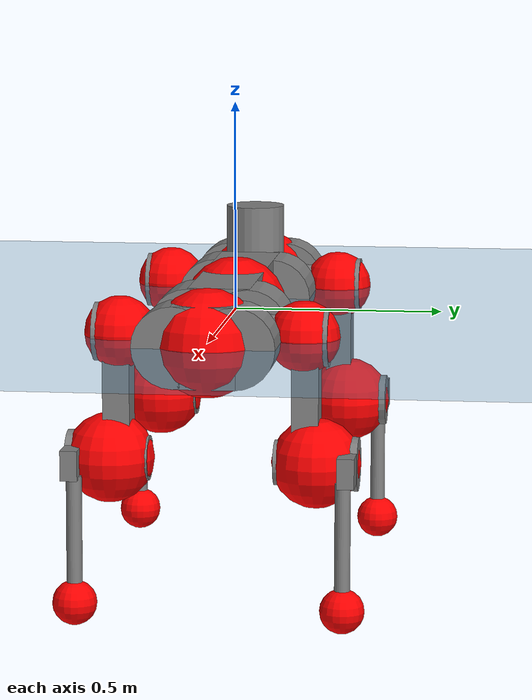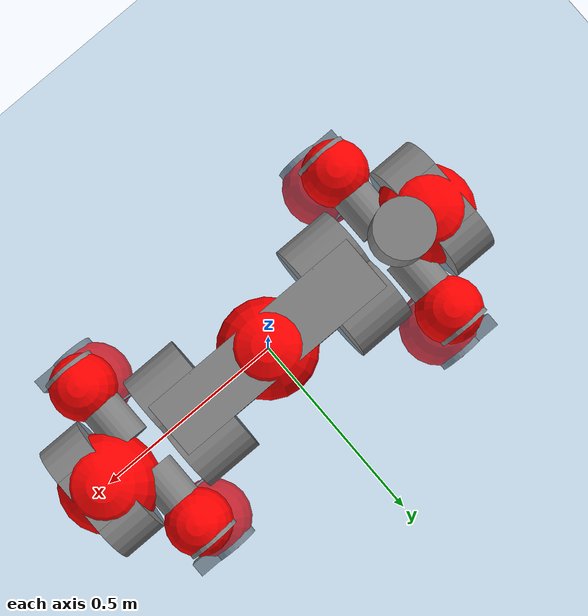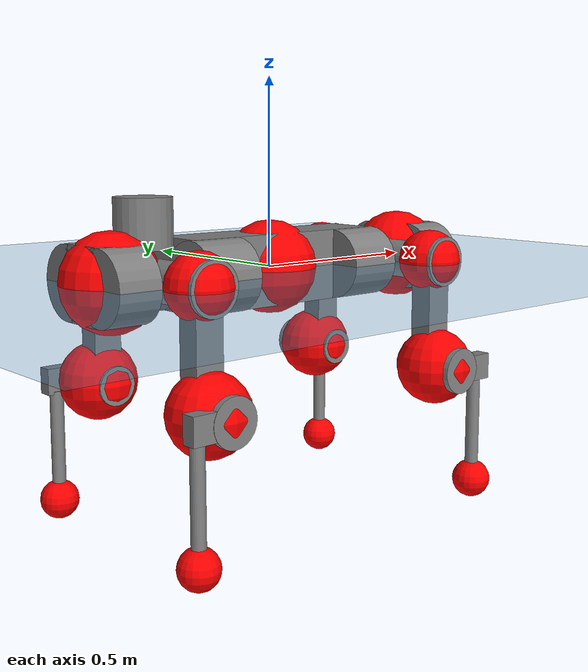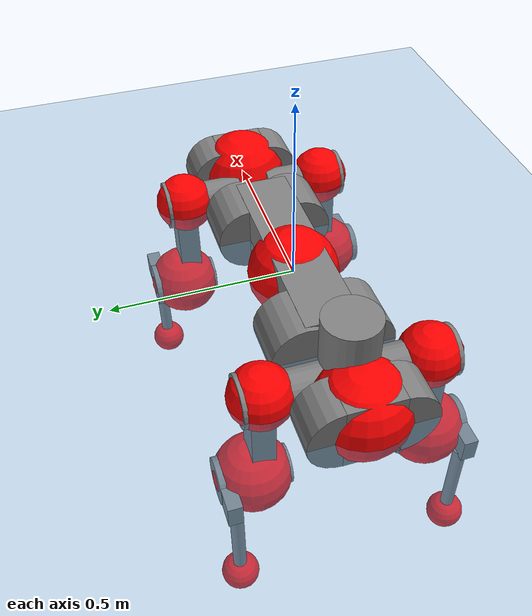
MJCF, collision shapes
<mujoco model="anymal_c">
  <compiler angle="radian" assetdir="assets" balanceinertia="true" inertiafromgeom="false"/>

  <option timestep="0.005" density="1.2" viscosity="2e-05"/>

  <size nkey="1"/>

  <visual>
    <quality shadowsize="8192"/>
    <map shadowclip="0.5"/>
  </visual>

  <default>
    <default class="/">
      <material specular="0" shininess="0.25"/>
      <geom contype="0" conaffinity="0" group="1" solref="-1000 -80"/>
      <site size="0.01 0.005 0.005" group="5"/>
      <general forcelimited="true" forcerange="-80 80" biastype="affine" gainprm="80" biasprm="0 -80 -2"/>
      <default class="anymal_c">
        <joint armature="0.01" damping="0.01" frictionloss="0.1"/>
        <default class="visual">
          <geom type="mesh" group="2"/>
          <default class="visual_zflip"/>
        </default>
        <default class="collision">
          <geom type="cylinder" group="3"/>
          <default class="foot">
            <geom size="0.03 0 0" type="sphere" condim="6" priority="1" friction="0.8 0.02 0.01" solimp="0.015 1 0.03"/>
          </default>
        </default>
      </default>
      <default class="reward_collision_sphere">
        <geom group="5" rgba="1 0 0 1"/>
      </default>
    </default>
  </default>

  <asset>
    <texture type="skybox" colorspace="auto" name="//unnamed_texture_0" builtin="gradient" rgb1="0.95 0.95 0.95" rgb2="0.95 0.95 0.95" width="100" height="600"/>
    <texture type="2d" colorspace="auto" name="texplane" builtin="checker" rgb1="0.345 0.575 0.748" rgb2="0.345 0.575 0.748" markrgb="1 1 1" width="512" height="512"/>
    <texture type="2d" colorspace="linear" name="base" file="base.png"/>
    <texture type="2d" colorspace="linear" name="top_shell" file="top_shell.png"/>
    <texture type="2d" colorspace="linear" name="bottom_shell" file="bottom_shell.png"/>
    <texture type="2d" colorspace="linear" name="remote" file="remote.png"/>
    <texture type="2d" colorspace="linear" name="hatch" file="hatch.png"/>
    <texture type="2d" colorspace="linear" name="handle" file="handle.png"/>
    <texture type="2d" colorspace="linear" name="face" file="face.png"/>
    <texture type="2d" colorspace="linear" name="battery" file="battery.png"/>
    <texture type="2d" colorspace="linear" name="lidar_cage" file="lidar_cage.png"/>
    <texture type="2d" colorspace="linear" name="depth_camera" file="depth_camera.png"/>
    <texture type="2d" colorspace="linear" name="wide_angle_camera" file="wide_angle_camera.png"/>
    <texture type="2d" colorspace="linear" name="lidar" file="lidar.png"/>
    <texture type="2d" colorspace="linear" name="drive" file="drive.png"/>
    <texture type="2d" colorspace="linear" name="hip_l" file="hip_l.png"/>
    <texture type="2d" colorspace="linear" name="shank_l" file="shank_l.png"/>
    <texture type="2d" colorspace="linear" name="foot" file="foot.png"/>
    <texture type="2d" colorspace="linear" name="thigh" file="thigh.png"/>
    <texture type="2d" colorspace="linear" name="shank_r" file="shank_r.png"/>
    <texture type="2d" colorspace="linear" name="hip_r" file="hip_r.png"/>
    <material name="MatPlane" class="/" texture="texplane" texuniform="true" texrepeat="2 2" specular="0.9" shininess="0.5"/>
    <material name="black_plastic" class="/" rgba="0.007 0.007 0.007 1"/>
    <material name="green" class="/" rgba="0.052 0.178 0.033 1"/>
    <material name="red" class="/" rgba="0.178 0.006 0.005 1"/>
    <material name="yellow" class="/" rgba="0.178 0.119 0.006 1"/>
    <material name="lwl" class="/" rgba="0.8 0.8 0.8 1"/>
    <material name="base" class="/" texture="base"/>
    <material name="top_shell" class="/" texture="top_shell"/>
    <material name="bottom_shell" class="/" texture="bottom_shell"/>
    <material name="hip_l" class="/" texture="hip_l"/>
    <material name="thigh" class="/" texture="thigh"/>
    <material name="shank_l" class="/" texture="shank_l"/>
    <material name="foot" class="/" texture="foot"/>
    <material name="hip_r" class="/" texture="hip_r"/>
    <material name="shank" class="/" texture="shank_r"/>
    <material name="hatch" class="/" texture="hatch"/>
    <material name="remote" class="/" texture="remote"/>
    <material name="handle" class="/" texture="handle"/>
    <material name="face" class="/" texture="face"/>
    <material name="depth_camera" class="/" texture="depth_camera"/>
    <material name="wide_angle_camera" class="/" texture="wide_angle_camera"/>
    <material name="battery" class="/" texture="battery"/>
    <material name="lidar_cage" class="/" texture="lidar_cage"/>
    <material name="lidar" class="/" texture="lidar"/>
    <material name="drive" class="/" texture="drive"/>
    <mesh name="base_0" class="/" file="base_0.obj"/>
    <mesh name="base_1" class="/" file="base_1.obj"/>
    <mesh name="base_2" class="/" file="base_2.obj"/>
    <mesh name="base_3" class="/" file="base_3.obj"/>
    <mesh name="base_4" class="/" file="base_4.obj"/>
    <mesh name="base_5" class="/" file="base_5.obj"/>
    <mesh name="top_shell" class="/" file="top_shell.obj"/>
    <mesh name="bottom_shell" class="/" file="bottom_shell.obj"/>
    <mesh name="remote" class="/" file="remote.obj"/>
    <mesh name="handle" class="/" file="handle.obj"/>
    <mesh name="face" class="/" file="face.obj"/>
    <mesh name="wide_angle_camera" class="/" file="wide_angle_camera.obj"/>
    <mesh name="depth_camera" class="/" file="depth_camera.obj"/>
    <mesh name="battery" class="/" file="battery.obj"/>
    <mesh name="lidar_cage" class="/" file="lidar_cage.obj"/>
    <mesh name="lidar" class="/" file="lidar.obj"/>
    <mesh name="drive" class="/" file="drive.obj"/>
    <mesh name="hip_l" class="/" file="hip_l.obj"/>
    <mesh name="thigh" class="/" file="thigh.obj"/>
    <mesh name="shank_l" class="/" file="shank_l.obj"/>
    <mesh name="foot" class="/" file="foot.obj"/>
    <mesh name="hip_r" class="/" file="hip_r.obj"/>
    <mesh name="hatch" class="/" file="hatch.obj"/>
    <mesh name="shank_r" class="/" file="shank_r.obj"/>
  </asset>

  <worldbody>
    <geom name="floor" class="/" size="100 100 0.125" type="plane" group="0" material="MatPlane"/>
    <light name="toplight_shadow" class="/" pos="0 0 5" dir="0.0990148 0.0990148 -0.990148" type="directional" ambient="0.04 0.04 0.04" diffuse="0.55 0.55 0.55" specular="0.12 0.12 0.12"/>
    <light name="toplight_fill" class="/" pos="0 0 5" dir="0.0990148 0.0990148 -0.990148" type="directional" castshadow="false" ambient="0.04 0.04 0.04" diffuse="0.3 0.3 0.3" specular="0.08 0.08 0.08"/>
    <body name="trunk" childclass="anymal_c" pos="0.000700605 -0.000303193 8.29175e-05" quat="1 -2.61548e-05 -9.41728e-05 -0.000454856">
      <inertial pos="0.000457821 -0.00281623 0.0495237" quat="0.497014 0.50346 0.498941 0.500563" mass="22.7339" diaginertia="1.06807 0.601575 0.258438"/>
      <joint name="//unnamed_joint_0" type="free" armature="0" damping="0" frictionloss="0"/>
      <geom name="//unnamed_geom_1" class="visual" material="green" mesh="base_0"/>
      <geom name="//unnamed_geom_2" class="visual" material="yellow" mesh="base_1"/>
      <geom name="//unnamed_geom_3" class="visual" material="red" mesh="base_2"/>
      <geom name="//unnamed_geom_4" class="visual" material="black_plastic" mesh="base_3"/>
      <geom name="//unnamed_geom_5" class="visual" material="lwl" mesh="base_4"/>
      <geom name="//unnamed_geom_6" class="visual" material="base" mesh="base_5"/>
      <geom name="trunk_1" class="collision" size="0.30346 0.0732489 0.0941771" type="box"/>
      <geom name="trunk_2" class="collision" size="0.0941771 0.0758649" pos="0.241017 0.0695564 0" quat="0.707107 0 0.707107 0"/>
      <geom name="trunk_3" class="collision" size="0.0941771 0.0758649" pos="-0.241017 0.0695564 0" quat="0.707107 0 0.707107 0"/>
      <geom name="trunk_4" class="collision" size="0.0941771 0.0758649" pos="0.241017 -0.0695564 0" quat="0.707107 0 0.707107 0"/>
      <geom name="trunk_5" class="collision" size="0.0941771 0.0758649" pos="-0.241017 -0.0695564 0" quat="0.707107 0 0.707107 0"/>
      <geom name="//unnamed_geom_12" class="visual" material="top_shell" mesh="top_shell"/>
      <geom name="//unnamed_geom_13" class="visual" material="bottom_shell" mesh="bottom_shell"/>
      <geom name="//unnamed_geom_14" class="visual" material="remote" mesh="remote"/>
      <geom name="//unnamed_geom_15" class="visual" material="handle" mesh="handle"/>
      <geom name="//unnamed_geom_16" class="visual" pos="0.459317 0 0" quat="1 0 0 0" material="face" mesh="face"/>
      <geom name="trunk_6" class="collision" size="0.0575527 0.0732489 0.0941771" pos="0.520264 0 0" type="box"/>
      <geom name="//unnamed_geom_18" class="collision" size="0.0941771 0.0575527" pos="0.520264 0.0695564 0" quat="0.707107 0 0.707107 0"/>
      <geom name="//unnamed_geom_19" class="collision" size="0.0941771 0.0575527" pos="0.520264 -0.0695564 0" quat="0.707107 0 0.707107 0"/>
      <geom name="//unnamed_geom_20" class="visual" pos="0.511563 0 -0.0297564" quat="0.965926 0 0.258819 0" material="depth_camera" mesh="depth_camera"/>
      <geom name="//unnamed_geom_21" class="visual" pos="0.568468 0 0.0155306" material="wide_angle_camera" mesh="wide_angle_camera"/>
      <geom name="//unnamed_geom_22" class="visual_zflip" pos="-0.459317 0 0" quat="0 0 0 1" material="face" mesh="face"/>
      <geom name="trunk_7" class="collision" size="0.0575527 0.0732489 0.0941771" pos="-0.520264 0 0" quat="0 0 0 1" type="box"/>
      <geom name="//unnamed_geom_24" class="collision" size="0.0941771 0.0575527" pos="-0.520264 -0.0695564 0" quat="0 -0.707107 0 0.707107"/>
      <geom name="//unnamed_geom_25" class="collision" size="0.0941771 0.0575527" pos="-0.520264 0.0695564 0" quat="0 -0.707107 0 0.707107"/>
      <geom name="//unnamed_geom_26" class="visual" pos="-0.511563 0 -0.0297564" quat="0 -0.258819 0 0.965926" material="depth_camera" mesh="depth_camera"/>
      <geom name="//unnamed_geom_27" class="visual_zflip" pos="-0.568468 0 0.0155306" quat="0 0 0 1" material="wide_angle_camera" mesh="wide_angle_camera"/>
      <geom name="//unnamed_geom_28" class="visual" material="battery" mesh="battery"/>
      <geom name="//unnamed_geom_29" class="visual" pos="0 0.0744706 0.030675" quat="0.683013 -0.183013 0.183013 0.683013" material="depth_camera" mesh="depth_camera"/>
      <geom name="//unnamed_geom_30" class="visual" pos="0 -0.0744706 0.030675" quat="0.683013 0.183013 0.183013 -0.683013" material="depth_camera" mesh="depth_camera"/>
      <geom name="//unnamed_geom_31" class="visual" pos="-0.403357 0 0.0762526" quat="1 0 0 0" material="lidar_cage" mesh="lidar_cage"/>
      <geom name="trunk_8" class="collision" size="0.0732489 0.0627847" pos="-0.403357 0 0.1385"/>
      <geom name="//unnamed_geom_33" class="visual" pos="-0.403357 -4.49687e-05 0.147525" quat="0.707107 0 0 -0.707107" material="lidar" mesh="lidar"/>
      <geom name="//unnamed_geom_34" class="visual" pos="0.332326 0.103357 -7.5533e-10" quat="0.258819 0.965926 0 0" material="drive" mesh="drive"/>
      <geom name="//unnamed_geom_35" class="visual" pos="0.332326 -0.103357 7.5533e-10" quat="0.258819 -0.965926 0 0" material="drive" mesh="drive"/>
      <geom name="//unnamed_geom_36" class="visual" pos="-0.332326 0.103357 7.5533e-10" quat="0 0 0.965926 -0.258819" material="drive" mesh="drive"/>
      <geom name="//unnamed_geom_37" class="visual" pos="-0.332326 -0.103357 -7.5533e-10" quat="0 0 -0.965926 -0.258819" material="drive" mesh="drive"/>
      <geom name="//unnamed_geom_38" class="visual" pos="0.128542 0 0.0757338" quat="1 0 0 0" material="hatch" mesh="hatch"/>
      <geom name="//unnamed_geom_39" class="reward_collision_sphere" size="0.125569"/>
      <geom name="//unnamed_geom_40" class="reward_collision_sphere" size="0.125569" pos="0.498656 0 0"/>
      <geom name="//unnamed_geom_41" class="reward_collision_sphere" size="0.125569" pos="-0.498656 0 0"/>
      <site name="imu" pos="0.289172 0.00870393 0.0345037" size="0.0104641"/>
      <camera name="track" pos="0 -1.98733 0" quat="0.707107 0.707107 0 0" mode="trackcom"/>
      <camera name="ego_camera" pos="0.498656 0 -0.041498" quat="-0.5 -0.5 0.5 0.5"/>
      <body name="LF_HIP" pos="0.330187 0.100934 -0.00116935" quat="0.259221 0.965818 9.02612e-05 0.000248684">
        <inertial pos="0.0626915 -0.0174875 -0.00801171" quat="-0.127256 0.709893 -0.135562 0.679324" mass="3.15237" diaginertia="0.00956709 0.00447302 0.00383841"/>
        <joint name="LF_HAA" pos="0 0 0" axis="1 -0.000440115 0.000466293" range="-0.721295 0.502527" armature="0.0106623" damping="0.020414" frictionloss="0.0925252"/>
        <geom name="//unnamed_geom_42" class="visual" pos="0 -4.44327e-05 7.29803e-06" quat="0.258819 -0.965926 0 0" material="hip_l" mesh="hip_l"/>
        <geom name="//unnamed_geom_43" class="visual" pos="0.0663766 -0.0789379 -0.0458987" quat="0.183013 -0.683013 0.683013 0.183013" material="drive" mesh="drive"/>
        <geom name="//unnamed_geom_44" class="collision" size="0.0523206 0.0732489" pos="0.0663766 -0.011884 -0.00716359" quat="-0.353553 -0.612372 0.612372 -0.353553"/>
        <body name="LF_THIGH" pos="0.0651112 -0.0695273 -0.0424557" quat="0.18226 -0.682818 0.683666 0.182051">
          <inertial pos="0.0345023 0.000238366 -0.253213" quat="0.994249 -0.0132151 -0.07168 0.0784635" mass="3.42984" diaginertia="0.0507375 0.0282393 0.00503666"/>
          <joint name="LF_HFE" pos="0 0 0" axis="0.999992 -0.00387117 0.000447749" stiffness="0.00270114" range="-3.08827 3.18308" armature="0.0108663" damping="0.0215304" frictionloss="0.0954617"/>
          <geom name="//unnamed_geom_45" class="visual" pos="0.00227732 3.58853e-06 0" quat="0.707107 0 0 -0.707107" material="thigh" mesh="thigh"/>
          <geom name="//unnamed_geom_46" class="collision" size="0.0680168 0.0418565" pos="0.044325 0 0" quat="0.5 0.5 -0.5 -0.5"/>
          <geom name="//unnamed_geom_47" class="collision" size="0.0392405 0.0313924 0.147873" pos="0.0332437 0 -0.146606" quat="0.707107 0 0 -0.707107" type="box"/>
          <geom name="//unnamed_geom_48" class="visual" pos="0.111145 0 -0.295673" quat="1 0 0 0" material="drive" mesh="drive"/>
          <geom name="//unnamed_geom_49" class="collision" size="0.0523206 0.0732489" pos="0.0335762 0 -0.295673" quat="0.707107 0 0.707107 0"/>
          <geom name="//unnamed_geom_50" class="reward_collision_sphere" size="0.083713" pos="0.0277031 0 0"/>
          <body name="LF_SHANK" pos="0.112088 0.00267954 -0.2951" quat="1 0.000134659 0.000307199 -4.84108e-06">
            <inertial pos="0.00605938 -0.0618366 -0.0848512" quat="0.993126 -0.114326 0.00105511 -0.0250905" mass="0.682929" diaginertia="0.0166143 0.00900121 0.00134621"/>
            <joint name="LF_KFE" pos="0 0 0" axis="0.999988 -0.00497729 4.62191e-05" range="-3.09592 3.14485" armature="0.0104645" damping="0.00676171" frictionloss="0.10703"/>
            <geom name="//unnamed_geom_51" class="visual" pos="0.000742586 0.0039595 0" quat="0.707107 0 0 -0.707107" material="shank_l" mesh="shank_l"/>
            <geom name="LF_kfe_act" class="collision" size="0.0627847 0.0209282" pos="0.0221625 0 0" quat="0.5 0.5 -0.5 -0.5"/>
            <geom name="//unnamed_geom_53" class="collision" size="0.0601677 0.0353164 0.0198818" pos="0.0221625 -0.0571346 0" quat="0.5 0.5 -0.5 -0.5" type="box"/>
            <geom name="//unnamed_geom_54" class="visual" pos="0.0144608 -0.0861167 -0.350627" quat="0.382683 0 0 -0.92388" material="foot" mesh="foot"/>
            <geom name="LF_calf" class="collision" size="0.0183122 0.147808" pos="0.014461 -0.0873927 -0.175313" quat="0.707107 0 0 -0.707107"/>
            <geom name="LF_foot" class="foot" size="0.0309497" pos="0.014461 -0.0873927 -0.327284" quat="0.707107 0 0 -0.707107"/>
            <geom name="//unnamed_geom_57" class="reward_collision_sphere" size="0.104641" pos="-0.0554062 0 0"/>
            <geom name="//unnamed_geom_58" class="reward_collision_sphere" size="0.0523206" pos="0.014461 -0.0873927 -0.327284"/>
            <site name="LF_foot" class="foot" pos="0.014461 -0.0873927 -0.327284" quat="0.707107 0 0 -0.707107" size="0.0104641"/>
          </body>
        </body>
      </body>
      <body name="RF_HIP" pos="0.330089 -0.103761 0.000839958" quat="0.258818 -0.965926 -1.37148e-06 -1.02293e-06">
        <inertial pos="0.0608313 0.0133004 -0.0109783" quat="0.137088 0.68699 0.131342 0.701428" mass="3.15499" diaginertia="0.00933001 0.0048619 0.00377371"/>
        <joint name="RF_HAA" pos="0 0 0" axis="0.999933 0.0100174 0.0058581" range="-0.513347 0.727974" armature="0.010583" damping="0" frictionloss="0.106044"/>
        <geom name="//unnamed_geom_59" class="visual" pos="0 4.44323e-05 7.29801e-06" quat="0.258819 0.965926 0 0" material="hip_r" mesh="hip_r"/>
        <geom name="//unnamed_geom_60" class="visual" pos="0.0663766 0.0789379 -0.0458987" quat="0.183013 0.683013 0.683013 -0.183013" material="drive" mesh="drive"/>
        <geom name="//unnamed_geom_61" class="collision" size="0.0523206 0.0732489" pos="0.0663766 0.011884 -0.00716359" quat="-0.353553 0.612372 0.612372 0.353553"/>
        <body name="RF_THIGH" pos="0.0682691 0.0712573 -0.0460713" quat="0.183103 0.683015 0.682678 -0.18416">
          <inertial pos="0.0368867 0.000217663 -0.256274" quat="0.992059 0.000458869 -0.0808063 0.0963772" mass="3.68503" diaginertia="0.0498466 0.028324 0.0052662"/>
          <joint name="RF_HFE" pos="0 0 0" axis="0.999999 -0.00100486 0.00113528" range="-3.14207 3.1592" armature="0.0094006" damping="0.0107895" frictionloss="0.108316"/>
          <geom name="//unnamed_geom_62" class="visual" pos="0.00227732 3.58853e-06 0" quat="0.707107 0 0 -0.707107" material="thigh" mesh="thigh"/>
          <geom name="//unnamed_geom_63" class="collision" size="0.0680168 0.0418565" pos="0.044325 0 0" quat="0.5 0.5 0.5 0.5"/>
          <geom name="//unnamed_geom_64" class="collision" size="0.0392405 0.0313924 0.147873" pos="0.0332437 0 -0.146606" quat="0.707107 0 0 0.707107" type="box"/>
          <geom name="//unnamed_geom_65" class="visual" pos="0.111145 0 -0.295673" quat="1 0 0 0" material="drive" mesh="drive"/>
          <geom name="//unnamed_geom_66" class="collision" size="0.0523206 0.0732489" pos="0.0335762 0 -0.295673" quat="0.707107 0 0.707107 0"/>
          <geom name="//unnamed_geom_67" class="reward_collision_sphere" size="0.083713" pos="0.0277031 0 0"/>
          <body name="RF_SHANK" pos="0.108921 0.000193327 -0.295841" quat="1 -0.000377222 -0.00074524 -0.000249761">
            <inertial pos="0.00364824 0.0608218 -0.083655" quat="0.992559 0.117067 0.009511 0.0321116" mass="0.713266" diaginertia="0.0176943 0.00913446 0.00138719"/>
            <joint name="RF_KFE" pos="0 0 0" axis="0.999999 0.00104035 5.37832e-05" range="-3.1903 3.09679" armature="0.0120328" damping="0.0225686" frictionloss="0.109687"/>
            <geom name="//unnamed_geom_68" class="visual" pos="0.000742582 -0.0039595 0" quat="0.707107 0 0 0.707107" material="shank" mesh="shank_r"/>
            <geom name="RF_kfe_act" class="collision" size="0.0627847 0.0209282" pos="0.0221625 0 0" quat="0.5 0.5 0.5 0.5"/>
            <geom name="//unnamed_geom_70" class="collision" size="0.0601677 0.0353164 0.0198818" pos="0.0221625 0.0571346 0" quat="0.5 0.5 0.5 0.5" type="box"/>
            <geom name="//unnamed_geom_71" class="visual" pos="0.0144612 0.0861167 -0.350627" quat="0.382683 0 0 0.92388" material="foot" mesh="foot"/>
            <geom name="RF_calf" class="collision" size="0.0183122 0.147808" pos="0.014461 0.0873927 -0.175313" quat="0.707107 0 0 0.707107"/>
            <geom name="RF_foot" class="foot" size="0.028039" pos="0.014461 0.0873927 -0.327284" quat="0.707107 0 0 0.707107"/>
            <geom name="//unnamed_geom_74" class="reward_collision_sphere" size="0.104641" pos="-0.0554062 0 0"/>
            <geom name="//unnamed_geom_75" class="reward_collision_sphere" size="0.0523206" pos="0.014461 0.0873927 -0.327284"/>
            <site name="RF_foot" class="foot" pos="0.014461 0.0873927 -0.327284" quat="0.707107 0 0 0.707107" size="0.0104641"/>
          </body>
        </body>
      </body>
      <body name="LH_HIP" pos="-0.328993 0.101397 -0.00153621" quat="2.31822e-06 -5.18886e-05 0.965936 -0.25878">
        <inertial pos="0.0628002 0.0173114 -0.0112308" quat="0.135724 0.684884 0.137694 0.702533" mass="3.29558" diaginertia="0.0103806 0.00498106 0.00400322"/>
        <joint name="LH_HAA" pos="0 0 0" axis="0.999889 0.000516068 -0.0149081" range="-0.504076 0.72803" armature="0.0109609" damping="0" frictionloss="0.105357"/>
        <geom name="//unnamed_geom_76" class="visual" pos="0 4.44323e-05 7.29801e-06" quat="-0.258819 -0.965926 0 0" material="hip_r" mesh="hip_r"/>
        <geom name="//unnamed_geom_77" class="visual" pos="0.0663766 0.0789379 -0.0458987" quat="0.183013 0.683013 0.683013 -0.183013" material="drive" mesh="drive"/>
        <geom name="//unnamed_geom_78" class="collision" size="0.0523206 0.0732489" pos="0.0663766 0.011884 -0.00716359" quat="-0.353553 0.612372 0.612372 0.353553"/>
        <body name="LH_THIGH" pos="0.0655009 0.0710704 -0.0437623" quat="0.183133 0.682924 0.683086 -0.182952">
          <inertial pos="0.0319614 -0.000190033 -0.257317" quat="0.992916 -0.0059572 -0.0796656 0.0879583" mass="3.38374" diaginertia="0.0475168 0.0289202 0.0048911"/>
          <joint name="LH_HFE" pos="0 0 0" axis="1 -0.000296026 -0.000385481" stiffness="0.0107201" range="-3.17145 3.09407" armature="0.00993846" damping="0" frictionloss="0.104882"/>
          <geom name="//unnamed_geom_79" class="visual" pos="0.00227732 3.58853e-06 0" quat="0.707107 0 0 -0.707107" material="thigh" mesh="thigh"/>
          <geom name="//unnamed_geom_80" class="collision" size="0.0680168 0.0418565" pos="0.044325 0 0" quat="0.5 0.5 -0.5 -0.5"/>
          <geom name="//unnamed_geom_81" class="collision" size="0.0392405 0.0313924 0.147873" pos="0.0332437 0 -0.146606" quat="0.707107 0 0 -0.707107" type="box"/>
          <geom name="//unnamed_geom_82" class="visual" pos="0.111145 0 -0.295673" quat="1 0 0 0" material="drive" mesh="drive"/>
          <geom name="//unnamed_geom_83" class="collision" size="0.0523206 0.0732489" pos="0.0335762 0 -0.295673" quat="0.707107 0 0.707107 0"/>
          <geom name="//unnamed_geom_84" class="reward_collision_sphere" size="0.083713" pos="0.0277031 0 0"/>
          <body name="LH_SHANK" pos="0.110806 -0.00091842 -0.295624" quat="1 -0.000155374 -7.71886e-05 2.85982e-05">
            <inertial pos="0.00746978 0.0635667 -0.0835348" quat="0.991627 0.126131 -0.00141376 0.0276718" mass="0.691423" diaginertia="0.0169341 0.00951287 0.0013767"/>
            <joint name="LH_KFE" pos="0 0 0" axis="1 -3.60623e-05 -3.25132e-05" range="-3.08879 3.09179" armature="0.0119037" damping="0.0233276" frictionloss="0.0901975"/>
            <geom name="//unnamed_geom_85" class="visual" pos="0.000742582 -0.0039595 0" quat="-0.707107 0 0 -0.707107" material="shank" mesh="shank_r"/>
            <geom name="LH_kfe_act" class="collision" size="0.0627847 0.0209282" pos="0.0221625 0 0" quat="0.5 0.5 -0.5 -0.5"/>
            <geom name="//unnamed_geom_87" class="collision" size="0.0601677 0.0353164 0.0198818" pos="0.0221625 0.0571346 0" quat="0.5 0.5 -0.5 -0.5" type="box"/>
            <geom name="//unnamed_geom_88" class="visual" pos="0.0144612 0.0861167 -0.350627" quat="-0.382683 0 0 -0.92388" material="foot" mesh="foot"/>
            <geom name="LH_calf" class="collision" size="0.0183122 0.147808" pos="0.014461 0.0873927 -0.175313" quat="0.707107 0 0 -0.707107"/>
            <geom name="LH_foot" class="foot" size="0.0341947" pos="0.014461 0.0873927 -0.327284" quat="0.707107 0 0 -0.707107"/>
            <geom name="//unnamed_geom_91" class="reward_collision_sphere" size="0.104641" pos="-0.0554062 0 0"/>
            <geom name="//unnamed_geom_92" class="reward_collision_sphere" size="0.0523206" pos="0.014461 0.0873927 -0.327284"/>
            <site name="LH_foot" class="foot" pos="0.014461 0.0873927 -0.327284" quat="0.707107 0 0 -0.707107" size="0.0104641"/>
          </body>
        </body>
      </body>
      <body name="RH_HIP" pos="-0.330004 -0.104474 0.00134712" quat="-4.49935e-06 -1.09231e-05 -0.965927 -0.258814">
        <inertial pos="0.0608526 -0.0137696 -0.0113356" quat="-0.127193 0.708749 -0.125279 0.682497" mass="3.19989" diaginertia="0.00947431 0.00465094 0.00383873"/>
        <joint name="RH_HAA" pos="0 0 0" axis="0.999895 0.000563445 -0.0144499" stiffness="0.00156229" range="-0.778217 0.525068" armature="0.0101202" damping="0.00311202" frictionloss="0.105168"/>
        <geom name="//unnamed_geom_93" class="visual" pos="0 -4.44327e-05 7.29803e-06" quat="-0.258819 0.965926 0 0" material="hip_l" mesh="hip_l"/>
        <geom name="//unnamed_geom_94" class="visual" pos="0.0663766 -0.0789379 -0.0458987" quat="-0.183013 0.683013 -0.683013 -0.183013" material="drive" mesh="drive"/>
        <geom name="//unnamed_geom_95" class="collision" size="0.0523206 0.0732489" pos="0.0663766 -0.011884 -0.00716359" quat="0.353553 0.612372 -0.612372 0.353553"/>
        <body name="RH_THIGH" pos="0.0687669 -0.0713005 -0.0456215" quat="-0.183878 0.682295 -0.683339 -0.183603">
          <inertial pos="0.0346082 0.00174781 -0.255505" quat="0.993077 -0.0062794 -0.0811547 0.0846875" mass="3.31267" diaginertia="0.0475787 0.0283307 0.0049525"/>
          <joint name="RH_HFE" pos="0 0 0" axis="0.999984 0.00103988 -0.00558613" stiffness="0.00231392" range="-3.10213 3.15326" armature="0.0110313" damping="0.0152308" frictionloss="0.105731"/>
          <geom name="//unnamed_geom_96" class="visual" pos="0.00227732 3.58853e-06 0" quat="0.707107 0 0 -0.707107" material="thigh" mesh="thigh"/>
          <geom name="//unnamed_geom_97" class="collision" size="0.0680168 0.0418565" pos="0.044325 0 0" quat="0.5 0.5 0.5 0.5"/>
          <geom name="//unnamed_geom_98" class="collision" size="0.0392405 0.0313924 0.147873" pos="0.0332437 0 -0.146606" quat="0.707107 0 0 0.707107" type="box"/>
          <geom name="//unnamed_geom_99" class="visual" pos="0.111145 0 -0.295673" quat="1 0 0 0" material="drive" mesh="drive"/>
          <geom name="//unnamed_geom_100" class="collision" size="0.0523206 0.0732489" pos="0.0335762 0 -0.295673" quat="0.707107 0 0.707107 0"/>
          <geom name="//unnamed_geom_101" class="reward_collision_sphere" size="0.083713" pos="0.0277031 0 0"/>
          <body name="RH_SHANK" pos="0.110226 0.0027175 -0.295061" quat="0.999999 0.000806909 -0.00102217 -0.000279128">
            <inertial pos="0.00890799 -0.0615675 -0.0842944" quat="0.994094 -0.107402 -0.00225623 -0.0153684" mass="0.684841" diaginertia="0.0165998 0.00895728 0.00131937"/>
            <joint name="RH_KFE" pos="0 0 0" axis="1 -0.000152274 1.59626e-07" range="-3.13392 3.19039" armature="0.0105001" damping="0.0230369" frictionloss="0.109387"/>
            <geom name="//unnamed_geom_102" class="visual" pos="0.000742586 0.0039595 0" quat="0.707107 0 0 -0.707107" material="shank_l" mesh="shank_l"/>
            <geom name="RH_kfe_act" class="collision" size="0.0627847 0.0209282" pos="0.0221625 0 0" quat="0.5 0.5 0.5 0.5"/>
            <geom name="//unnamed_geom_104" class="collision" size="0.0601677 0.0353164 0.0198818" pos="0.0221625 -0.0571346 0" quat="0.5 0.5 0.5 0.5" type="box"/>
            <geom name="//unnamed_geom_105" class="visual" pos="0.0144608 -0.0861167 -0.350627" quat="0.382683 0 0 -0.92388" material="foot" mesh="foot"/>
            <geom name="RH_calf" class="collision" size="0.0183122 0.147808" pos="0.014461 -0.0873927 -0.175313" quat="0.707107 0 0 0.707107"/>
            <geom name="RH_foot" class="foot" size="0.0274252" pos="0.014461 -0.0873927 -0.327284" quat="0.707107 0 0 0.707107"/>
            <geom name="//unnamed_geom_108" class="reward_collision_sphere" size="0.104641" pos="-0.0554062 0 0"/>
            <geom name="//unnamed_geom_109" class="reward_collision_sphere" size="0.0523206" pos="0.014461 -0.0873927 -0.327284"/>
            <site name="RH_foot" class="foot" pos="0.014461 -0.0873927 -0.327284" quat="0.707107 0 0 0.707107" size="0.0104641"/>
          </body>
        </body>
      </body>
    </body>
  </worldbody>

  <contact>
    <pair class="/" geom1="floor" geom2="LF_foot" name="//unnamed_contact_0"/>
    <pair class="/" geom1="floor" geom2="RF_foot" name="//unnamed_contact_1"/>
    <pair class="/" geom1="floor" geom2="LH_foot" name="//unnamed_contact_2"/>
    <pair class="/" geom1="floor" geom2="RH_foot" name="//unnamed_contact_3"/>
  </contact>

  <actuator>
    <general name="LF_HAA" class="/" joint="LF_HAA" forcerange="-76.2777 76.2777" gainprm="80.4247" biasprm="0 -80.4247 -2.09636"/>
    <general name="LF_HFE" class="/" joint="LF_HFE" forcerange="-75.4528 75.4528" gainprm="80.4247" biasprm="0 -80.4247 -2.09636"/>
    <general name="LF_KFE" class="/" joint="LF_KFE" forcerange="-84.6605 84.6605" gainprm="80.4247" biasprm="0 -80.4247 -2.09636"/>
    <general name="RF_HAA" class="/" joint="RF_HAA" forcerange="-85.0858 85.0858" gainprm="80.4247" biasprm="0 -80.4247 -2.09636"/>
    <general name="RF_HFE" class="/" joint="RF_HFE" forcerange="-93.4544 93.4544" gainprm="80.4247" biasprm="0 -80.4247 -2.09636"/>
    <general name="RF_KFE" class="/" joint="RF_KFE" forcerange="-87.1244 87.1244" gainprm="80.4247" biasprm="0 -80.4247 -2.09636"/>
    <general name="LH_HAA" class="/" joint="LH_HAA" forcerange="-85.1499 85.1499" gainprm="80.4247" biasprm="0 -80.4247 -2.09636"/>
    <general name="LH_HFE" class="/" joint="LH_HFE" forcerange="-76.391 76.391" gainprm="80.4247" biasprm="0 -80.4247 -2.09636"/>
    <general name="LH_KFE" class="/" joint="LH_KFE" forcerange="-86.5945 86.5945" gainprm="80.4247" biasprm="0 -80.4247 -2.09636"/>
    <general name="RH_HAA" class="/" joint="RH_HAA" forcerange="-85.7005 85.7005" gainprm="80.4247" biasprm="0 -80.4247 -2.09636"/>
    <general name="RH_HFE" class="/" joint="RH_HFE" forcerange="-92.962 92.962" gainprm="80.4247" biasprm="0 -80.4247 -2.09636"/>
    <general name="RH_KFE" class="/" joint="RH_KFE" forcerange="-80.8744 80.8744" gainprm="80.4247" biasprm="0 -80.4247 -2.09636"/>
  </actuator>

  <sensor>
    <gyro site="imu" name="imu_angular_velocity"/>
    <velocimeter site="imu" name="imu_linear_velocity"/>
    <framelinvel objtype="site" objname="LF_foot" name="LF_foot_global_linear_velocity"/>
    <framelinvel objtype="site" objname="RF_foot" name="RF_foot_global_linear_velocity"/>
    <framelinvel objtype="site" objname="LH_foot" name="LH_foot_global_linear_velocity"/>
    <framelinvel objtype="site" objname="RH_foot" name="RH_foot_global_linear_velocity"/>
  </sensor>

  <keyframe>
    <key name="home" qpos="0 0 0.55 1 0 0 0 0 0.4 -0.8 0 -0.4 0.8 0 -0.4 0.8 0 0.4 -0.8"/>
  </keyframe>
</mujoco>
